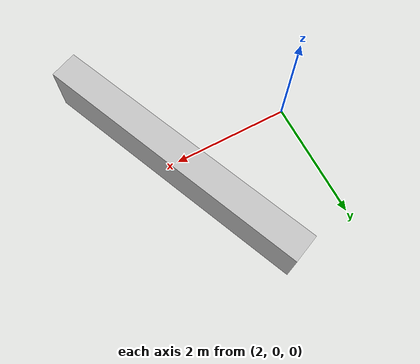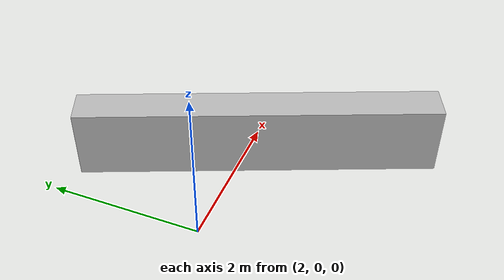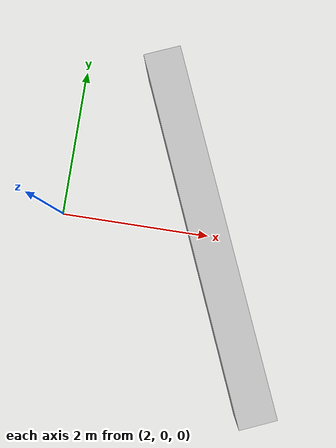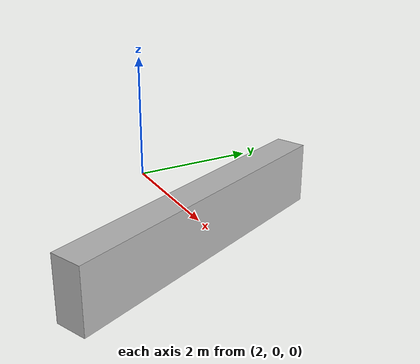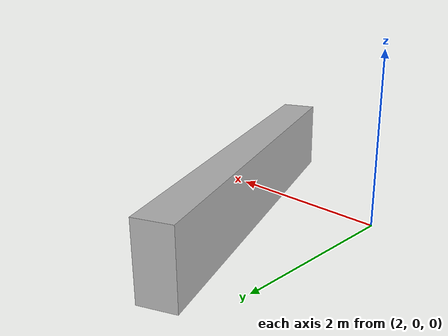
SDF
<?xml version="1.0" ?>
<sdf version="1.4">
  <world name="underwater">
    <include>
      <uri>model://sun</uri>
    </include>
  <include>
    <uri>model://Obstacle</uri>
    <pose>4 0 0 0 0 0.4</pose>
  </include>
  <gui>
    <camera name="user_camera">
      <pose>13.5 -5.5 2.5 0.0 0.112 2.320</pose>
    </camera>
  </gui>
  </world>
</sdf>

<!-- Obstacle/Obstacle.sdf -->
<sdf version='1.5'>
  <model name='Obstacle'>
    <pose>0 0 0 0 0 0</pose>
    <link name='base_link2'>
      <visual name='box_vis'>
         <geometry>
           <box>
             <size>0.5 5 1</size>
           </box>
         </geometry>
       </visual>
      <collision name='box_col'>
         <geometry>
           <box>
		   <size>0.5 5 1</size>
           </box>
         </geometry>
       </collision>
      <inertial>
        <mass>0.01</mass>
        <inertia>
          <ixx>1</ixx>
          <ixy>0</ixy>
          <ixz>0</ixz>
          <iyy>1</iyy>
          <iyz>0</iyz>
          <izz>1</izz>
        </inertia>
      </inertial>
    </link>
    <static>true</static>
  </model>
</sdf>
